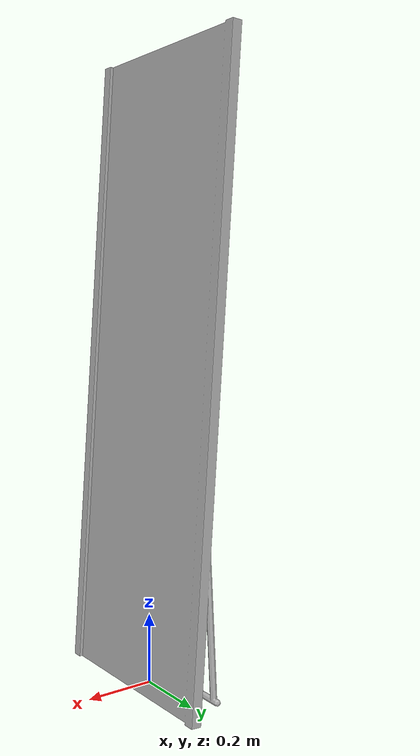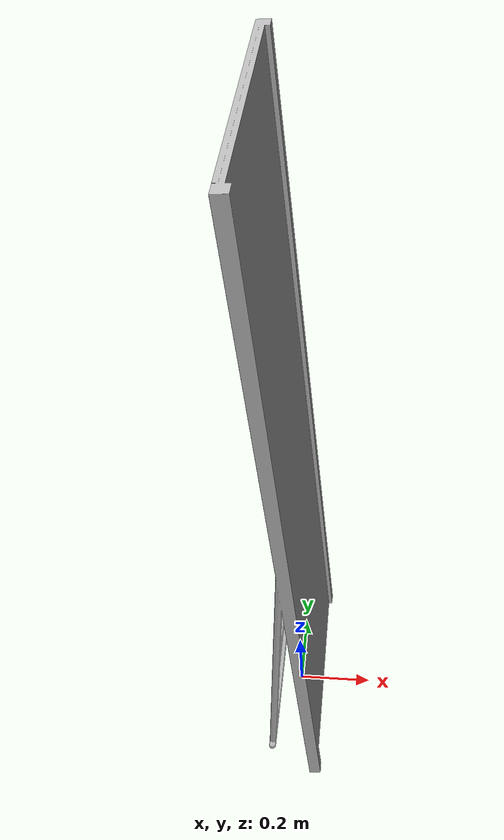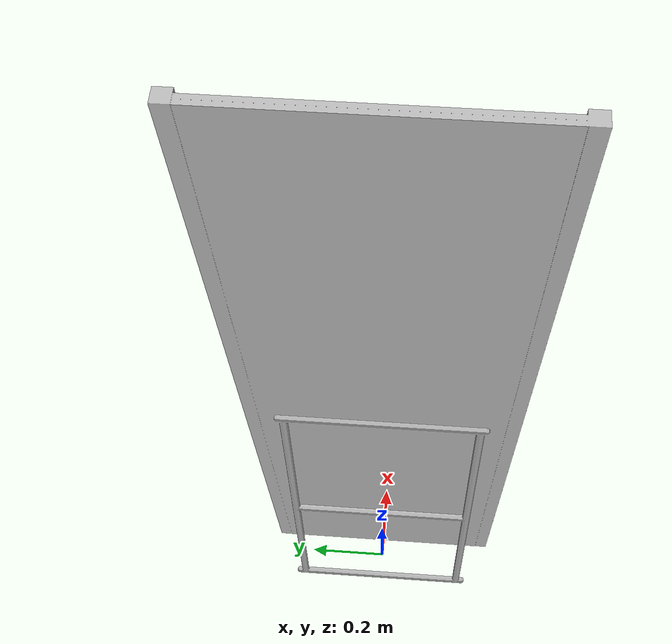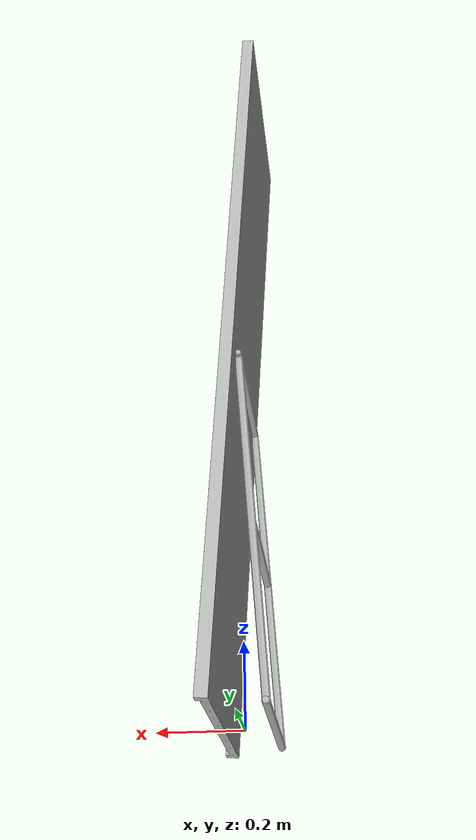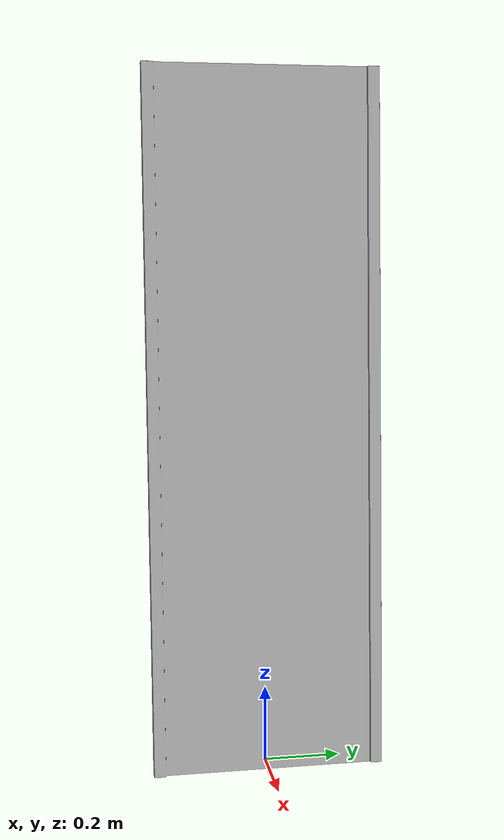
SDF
<?xml version='1.0'?>
<sdf version='1.4'>
  <model name='239'>
    <pose>0 0 0 0 0 0</pose>
    <static>true</static>
    <link name='link'>
      <collision name='collision'>
        <pose>0 0 0 0 0 0</pose>
        <geometry>
          <box>
            <size>0.149704 0.6 2</size>
          </box>
        </geometry>
      </collision>
      <visual name='visual'>
        <pose>0 0 0 0 0 0</pose>
        <geometry>
          <mesh><uri>model://239/239.dae</uri></mesh>
        </geometry>
      </visual>
    </link>
  </model>
</sdf>
